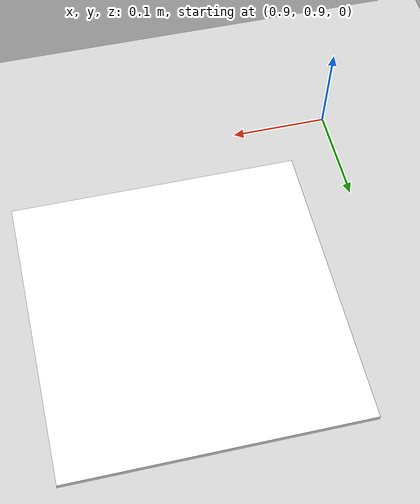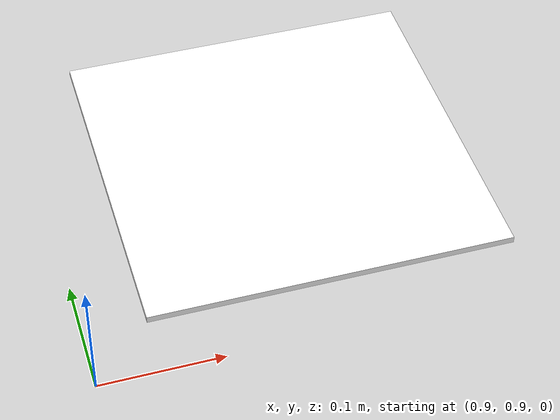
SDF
<?xml version="1.0" ?>
<sdf version="1.6">
  <world name="empty">
    <physics name="1ms" type="ignored">
      <max_step_size>0.001</max_step_size>
      <real_time_factor>1.0</real_time_factor>
    </physics>
    <plugin
      filename="ignition-gazebo-physics-system"
      name="ignition::gazebo::systems::Physics">
    </plugin>
    <plugin
      filename="ignition-gazebo-user-commands-system"
      name="ignition::gazebo::systems::UserCommands">
    </plugin>
    <plugin
      filename="ignition-gazebo-scene-broadcaster-system"
      name="ignition::gazebo::systems::SceneBroadcaster">
    </plugin>
    <plugin
      filename="ignition-gazebo-contact-system"
      name="ignition::gazebo::systems::Contact">
    </plugin>
    <plugin
      filename="libignition-gazebo-sensors-system.so"
      name="ignition::gazebo::systems::Sensors">
      <render_engine>ogre2</render_engine>
    </plugin>
    <plugin filename="libignition-gazebo-imu-system.so"
      name="ignition::gazebo::systems::Imu">
    </plugin>

    <light type="directional" name="sun">
      <cast_shadows>true</cast_shadows>
      <pose>0 0 10 0 0 0</pose>
      <diffuse>0.8 0.8 0.8 1</diffuse>
      <specular>0.2 0.2 0.2 1</specular>
      <attenuation>
        <range>1000</range>
        <constant>0.9</constant>
        <linear>0.01</linear>
        <quadratic>0.001</quadratic>
      </attenuation>
      <direction>-0.5 0.1 -0.9</direction>
    </light>

    <model name="ground_plane">
      <static>true</static>
      <link name="link">
        <collision name="collision">
          <geometry>
            <plane>
              <normal>0 0 1</normal>
              <size>100 100</size>
            </plane>
          </geometry>
        </collision>
        <visual name="visual">
          <geometry>
            <plane>
              <normal>0 0 1</normal>
              <size>100 100</size>
            </plane>
          </geometry>
          <material>
            <ambient>0.8 0.8 0.8 1</ambient>
            <diffuse>0.8 0.8 0.8 1</diffuse>
            <specular>0.8 0.8 0.8 1</specular>
          </material>
        </visual>
      </link>
    </model>

    <model name="white_plane">
      <static>true</static>
      <pose>1.1 1.1 0 0 0 0</pose>
      <link name="link">
        <collision name="collision">
          <geometry>
            <box>
              <size>0.3 0.3 0.01</size>
            </box>
          </geometry>
        </collision>

        <visual name="visual">
          <geometry>
            <box>
              <size>0.3 0.3 0.01</size>
            </box>
          </geometry>
          <material>
            <ambient>1.0 1.0 1.0 1</ambient>
            <diffuse>1.0 1.0 1.0 1</diffuse>
            <specular>1.0 1.0 1.0 1</specular>
          </material>
        </visual>
      </link>
    </model>

  </world>
</sdf>
